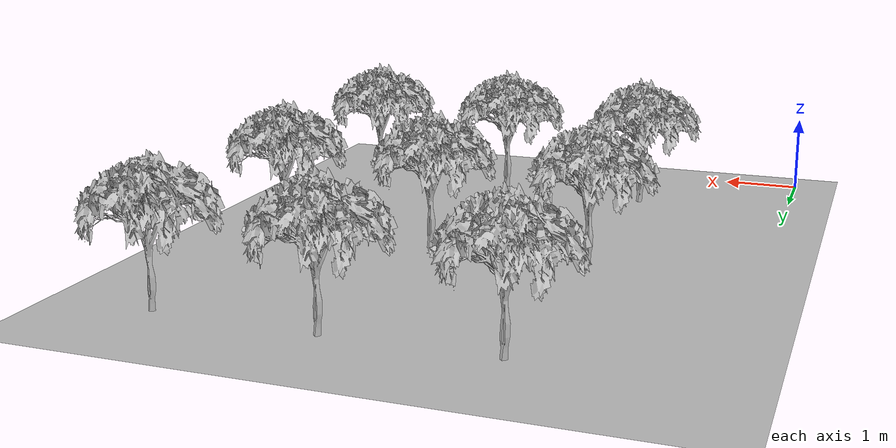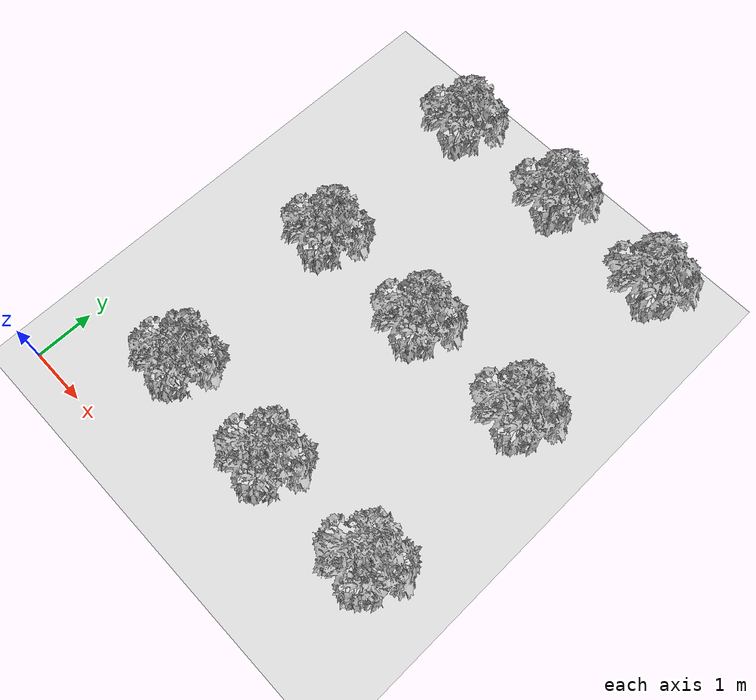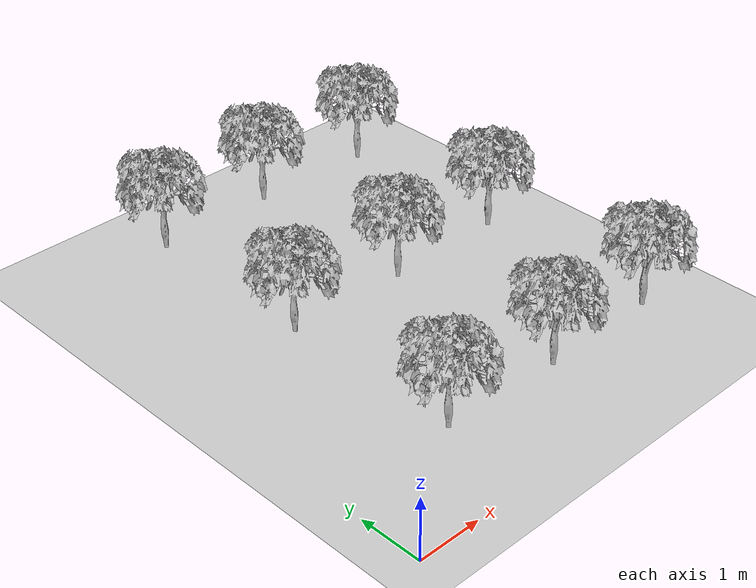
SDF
<sdf version="1.5">
 <world name="default">
  <light name="sun" type="directional">
   <pose>0 0 10 0 -0 0</pose>
   <diffuse>0.8 0.8 0.8 1</diffuse>
   <specular>0.2 0.2 0.2 1</specular>
   <attenuation>
    <range>1000</range>
    <constant>0.9</constant>
    <linear>0.01</linear>
    <quadratic>0.001</quadratic>
   </attenuation>
   <direction>-0.5 0.1 -0.9</direction>
  </light>
  <model name="ground_plane">
   <static>1</static>
   <link name="link">
    <collision name="collision">
     <geometry><plane><normal>0 0 1</normal><size>100 100</size></plane></geometry>
     <surface>
      <contact><collide_bitmask>65535</collide_bitmask></contact>
      <friction><ode><mu>100</mu><mu2>50</mu2></ode></friction>
     </surface>
    </collision>
    <visual name="visual">
     <cast_shadows>0</cast_shadows>
     <geometry><plane><normal>0 0 1</normal><size>100 100</size></plane></geometry>
     <material>
      <script><uri>file://media/materials/scripts/gazebo.material</uri><name>Gazebo/Grey</name></script>
     </material>
    </visual>
   </link>
  </model>
  <gravity>0 0 -9.8</gravity>
  <magnetic_field>6e-06 2.3e-05 -4.2e-05</magnetic_field>
  <atmosphere type="adiabatic"/>
  <physics name="default_physics" default="0" type="ode">
   <max_step_size>0.001</max_step_size>
   <real_time_factor>1</real_time_factor>
   <real_time_update_rate>1000</real_time_update_rate>
  </physics>
  <scene><ambient>0.4 0.4 0.4 1</ambient><background>0.7 0.7 0.7 1</background><shadows>1</shadows></scene>
  <audio><device>default</device></audio>
  <spherical_coordinates>
   <surface_model>EARTH_WGS84</surface_model>
   <latitude_deg>0</latitude_deg>
   <longitude_deg>0</longitude_deg>
   <elevation>0</elevation>
   <heading_deg>0</heading_deg>
  </spherical_coordinates>
  <model name="Tree 2 0.7">
   <static>1</static>
   <pose>1.99528 1.48367 0 1.57079 -0 0</pose>
   <link name="link">
    <collision name="collision">
     <geometry><mesh><scale>0.7 0.7 0.7</scale><uri>model://tree_2/meshes/tree_2.obj</uri></mesh></geometry>
    </collision>
    <visual name="visual">
     <geometry><mesh><scale>0.7 0.7 0.7</scale><uri>model://tree_2/meshes/tree_2.obj</uri></mesh></geometry>
    </visual>
   </link>
  </model>
  <model name="Tree 2 0.7_0">
   <static>1</static>
   <pose>3.98856 1.41985 0 1.57079 -0 0</pose>
   <link name="link">
    <collision name="collision">
     <geometry><mesh><scale>0.7 0.7 0.7</scale><uri>model://tree_2/meshes/tree_2.obj</uri></mesh></geometry>
    </collision>
    <visual name="visual">
     <geometry><mesh><scale>0.7 0.7 0.7</scale><uri>model://tree_2/meshes/tree_2.obj</uri></mesh></geometry>
    </visual>
   </link>
  </model>
  <model name="Tree 2 0.7_1">
   <static>1</static>
   <pose>5.98974 1.45747 0 1.57079 -0 0</pose>
   <link name="link">
    <collision name="collision">
     <geometry><mesh><scale>0.7 0.7 0.7</scale><uri>model://tree_2/meshes/tree_2.obj</uri></mesh></geometry>
    </collision>
    <visual name="visual">
     <geometry><mesh><scale>0.7 0.7 0.7</scale><uri>model://tree_2/meshes/tree_2.obj</uri></mesh></geometry>
    </visual>
   </link>
  </model>
  <model name="Tree 2 0.7_2">
   <static>1</static>
   <pose>1.97204 4.46722 0 1.57079 -0 0</pose>
   <link name="link">
    <collision name="collision">
     <geometry><mesh><scale>0.7 0.7 0.7</scale><uri>model://tree_2/meshes/tree_2.obj</uri></mesh></geometry>
    </collision>
    <visual name="visual">
     <geometry><mesh><scale>0.7 0.7 0.7</scale><uri>model://tree_2/meshes/tree_2.obj</uri></mesh></geometry>
    </visual>
   </link>
  </model>
  <model name="Tree 2 0.7_3">
   <static>1</static>
   <pose>3.98393 4.44671 0 1.57079 -0 0</pose>
   <link name="link">
    <collision name="collision">
     <geometry><mesh><scale>0.7 0.7 0.7</scale><uri>model://tree_2/meshes/tree_2.obj</uri></mesh></geometry>
    </collision>
    <visual name="visual">
     <geometry><mesh><scale>0.7 0.7 0.7</scale><uri>model://tree_2/meshes/tree_2.obj</uri></mesh></geometry>
    </visual>
   </link>
  </model>
  <model name="Tree 2 0.7_4">
   <static>1</static>
   <pose>5.98002 4.48487 0 1.57079 -0 0</pose>
   <link name="link">
    <collision name="collision">
     <geometry><mesh><scale>0.7 0.7 0.7</scale><uri>model://tree_2/meshes/tree_2.obj</uri></mesh></geometry>
    </collision>
    <visual name="visual">
     <geometry><mesh><scale>0.7 0.7 0.7</scale><uri>model://tree_2/meshes/tree_2.obj</uri></mesh></geometry>
    </visual>
   </link>
  </model>
  <model name="Tree 2 0.7_5">
   <static>1</static>
   <pose>2.00945 7.47231 0 1.57079 -0 0</pose>
   <link name="link">
    <collision name="collision">
     <geometry><mesh><scale>0.7 0.7 0.7</scale><uri>model://tree_2/meshes/tree_2.obj</uri></mesh></geometry>
    </collision>
    <visual name="visual">
     <geometry><mesh><scale>0.7 0.7 0.7</scale><uri>model://tree_2/meshes/tree_2.obj</uri></mesh></geometry>
    </visual>
   </link>
  </model>
  <model name="Tree 2 0.7_6">
   <static>1</static>
   <pose>3.98687 7.50877 0 1.57079 -0 0</pose>
   <link name="link">
    <collision name="collision">
     <geometry><mesh><scale>0.7 0.7 0.7</scale><uri>model://tree_2/meshes/tree_2.obj</uri></mesh></geometry>
    </collision>
    <visual name="visual">
     <geometry><mesh><scale>0.7 0.7 0.7</scale><uri>model://tree_2/meshes/tree_2.obj</uri></mesh></geometry>
    </visual>
   </link>
  </model>
  <model name="Tree 2 0.7_7">
   <static>1</static>
   <pose>5.98259 7.44762 0 1.57079 -0 0</pose>
   <link name="link">
    <collision name="collision">
     <geometry><mesh><scale>0.7 0.7 0.7</scale><uri>model://tree_2/meshes/tree_2.obj</uri></mesh></geometry>
    </collision>
    <visual name="visual">
     <geometry><mesh><scale>0.7 0.7 0.7</scale><uri>model://tree_2/meshes/tree_2.obj</uri></mesh></geometry>
    </visual>
   </link>
  </model>
 </world>
</sdf>
